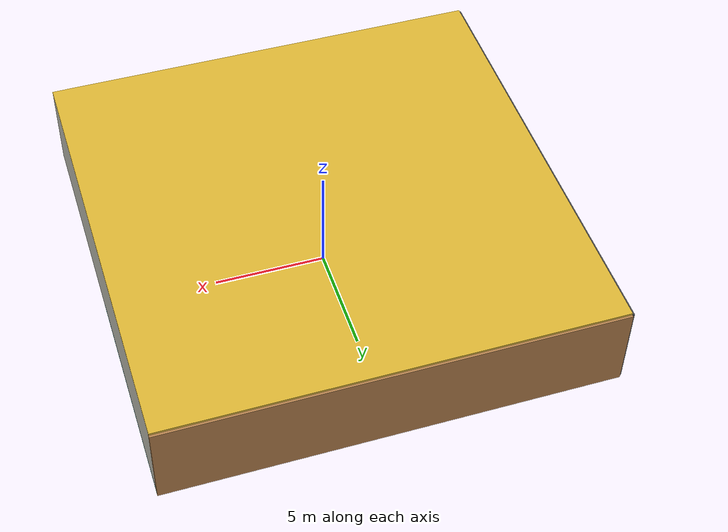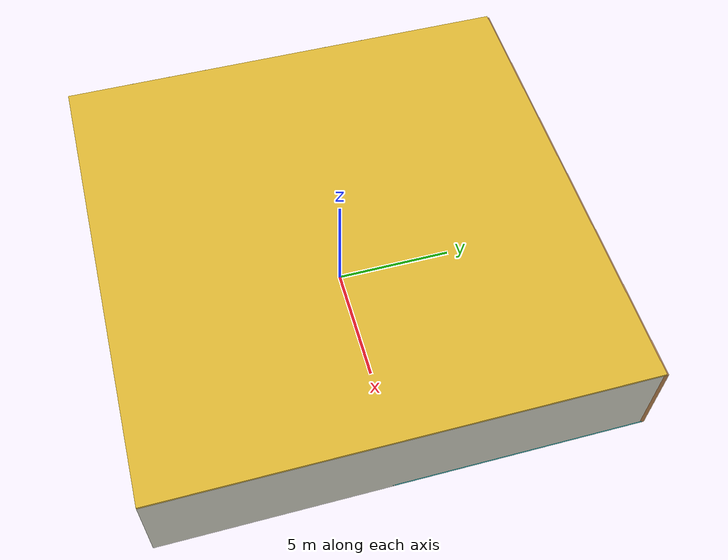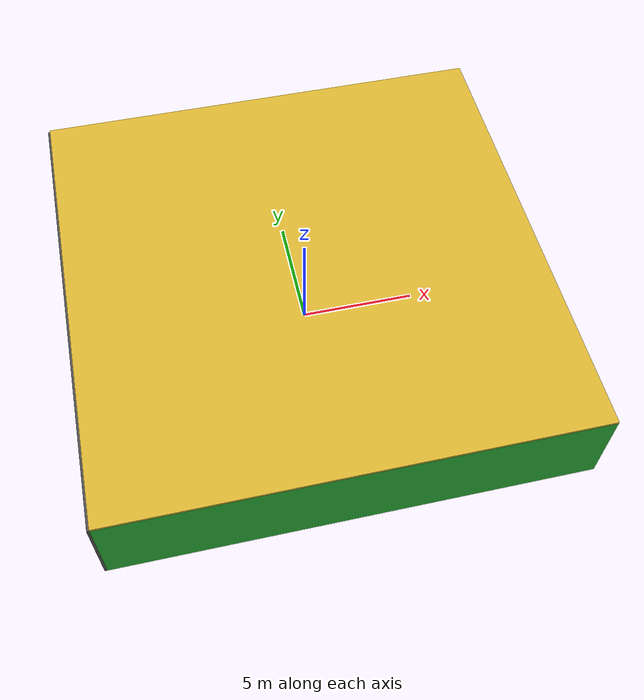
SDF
<sdf version="1.4">
 <world name="default">
  <physics type="ode">
   <max_step_size>0.001</max_step_size>
   <real_time_factor>1</real_time_factor>
   <real_time_update_rate>1000</real_time_update_rate>
   <gravity>0 0 -9.8</gravity>
  </physics>
  <scene><ambient>0.4 0.4 0.4 1</ambient><background>0.7 0.7 0.7 1</background><shadows>1</shadows></scene>
  <model name="Surrounding">
   <static>1</static>
   <link name="Ceiling">
    <collision name="Ceiling_Collision"><geometry><box><size>20 20 0.1</size></box></geometry></collision>
    <visual name="Ceiling_Visual">
     <geometry><box><size>20 20 0.1</size></box></geometry>
     <material>
      <script><uri>file://media/materials/scripts/gazebo.material</uri><name>Gazebo/Gold</name></script>
     </material>
    </visual>
    <pose>0 0 4.05 0 0 0</pose>
   </link>
   <link name="Wall_South">
    <collision name="Wall_South_Collision">
     <geometry><box><size>20 0 4</size></box></geometry>
     <pose>0 0 2 0 -0 0</pose>
    </collision>
    <visual name="Wall_South_Visual">
     <pose>0 0 2 0 -0 0</pose>
     <geometry><box><size>20 0 4</size></box></geometry>
     <material>
      <script><uri>file://media/materials/scripts/gazebo.material</uri><name>Gazebo/Green</name></script>
     </material>
    </visual>
    <velocity_decay><linear>0</linear><angular>0</angular></velocity_decay>
    <pose>0 -10 0 0 -0 0</pose>
   </link>
   <link name="Wall_East">
    <collision name="Wall_21_Collision">
     <geometry><box><size>20 0 4</size></box></geometry>
     <pose>0 0 2 0 -0 0</pose>
    </collision>
    <visual name="Wall_21_Visual">
     <pose>0 0 2 0 -0 0</pose>
     <geometry><box><size>20 0 4</size></box></geometry>
     <material>
      <script><uri>file://media/materials/scripts/gazebo.material</uri><name>Gazebo/PaintedWall</name></script>
     </material>
    </visual>
    <velocity_decay><linear>0</linear><angular>0</angular></velocity_decay>
    <pose>10 0 0 0 -0 1.5708</pose>
   </link>
   <link name="Wall_North">
    <collision name="Wall_22_Collision">
     <geometry><box><size>20 0.2 4</size></box></geometry>
     <pose>0 0 2 0 -0 0</pose>
    </collision>
    <visual name="Wall_22_Visual">
     <pose>0 0 2 0 -0 0</pose>
     <geometry><box><size>20 0.2 4</size></box></geometry>
     <material>
      <script><uri>file://media/materials/scripts/gazebo.material</uri><name>Gazebo/Wood</name></script>
     </material>
    </visual>
    <velocity_decay><linear>0</linear><angular>0</angular></velocity_decay>
    <pose>0 10 0 0 -0 0</pose>
   </link>
   <link name="Wall_West">
    <collision name="Wall_23_Collision">
     <geometry><box><size>20 0.2 4</size></box></geometry>
     <pose>0 0 2 0 -0 0</pose>
    </collision>
    <visual name="Wall_23_Visual">
     <pose>0 0 2 0 -0 0</pose>
     <geometry><box><size>20 0.2 4</size></box></geometry>
     <material>
      <script><uri>file://media/materials/scripts/gazebo.material</uri><name>Gazebo/Road</name></script>
     </material>
    </visual>
    <velocity_decay><linear>0</linear><angular>0</angular></velocity_decay>
    <pose>-10 0 0 0 0 -1.5708</pose>
   </link>
   <link name="Ground_link">
    <collision name="collision">
     <pose>0 0 .05 0 -0 0</pose>
     <geometry><box><size>20 20 0.1</size></box></geometry>
    </collision>
    <visual name="visual">
     <pose>0 0 .05 0 -0 0</pose>
     <geometry><box><size>20 20 0.1</size></box></geometry>
     <material>
      <script><uri>file://media/materials/scripts/gazebo.material</uri><name>Gazebo/Turquoise</name></script>
     </material>
    </visual>
   </link>
   <static>1</static>
  </model>
  <spherical_coordinates>
   <surface_model>EARTH_WGS84</surface_model>
   <latitude_deg>0</latitude_deg>
   <longitude_deg>0</longitude_deg>
   <elevation>0</elevation>
   <heading_deg>0</heading_deg>
  </spherical_coordinates>
  <light name="lightball_0" type="diffuse">
   <diffuse>0.8 0.8 0.8 1</diffuse>
   <specular>0.2 0.2 0.2 1</specular>
   <attenuation>
    <range>100</range>
    <constant>0.7</constant>
    <linear>0.01</linear>
    <quadratic>0.001</quadratic>
   </attenuation>
   <direction>-0.5 0.1 -0.9</direction>
   <pose>-5.94194912648 9.35582436357 3.86721445758 0 0 0</pose>
  </light>
  <light name="lightball_1" type="diffuse">
   <diffuse>0.8 0.8 0.8 1</diffuse>
   <specular>0.2 0.2 0.2 1</specular>
   <attenuation>
    <range>100</range>
    <constant>0.7</constant>
    <linear>0.01</linear>
    <quadratic>0.001</quadratic>
   </attenuation>
   <direction>-0.5 0.1 -0.9</direction>
   <pose>8.79418058517 -1.58675382362 2.28776082474 0 0 0</pose>
  </light>
  <light name="lightball_2" type="diffuse">
   <diffuse>0.8 0.8 0.8 1</diffuse>
   <specular>0.2 0.2 0.2 1</specular>
   <attenuation>
    <range>100</range>
    <constant>0.7</constant>
    <linear>0.01</linear>
    <quadratic>0.001</quadratic>
   </attenuation>
   <direction>-0.5 0.1 -0.9</direction>
   <pose>-0.461234043694 -5.94234000257 1.33374357908 0 0 0</pose>
  </light>
  <light name="lightball_3" type="diffuse">
   <diffuse>0.8 0.8 0.8 1</diffuse>
   <specular>0.2 0.2 0.2 1</specular>
   <attenuation>
    <range>100</range>
    <constant>0.7</constant>
    <linear>0.01</linear>
    <quadratic>0.001</quadratic>
   </attenuation>
   <direction>-0.5 0.1 -0.9</direction>
   <pose>9.28413894308 -2.95738576458 3.5384392013 0 0 0</pose>
  </light>
  <light name="lightball_4" type="diffuse">
   <diffuse>0.8 0.8 0.8 1</diffuse>
   <specular>0.2 0.2 0.2 1</specular>
   <attenuation>
    <range>100</range>
    <constant>0.7</constant>
    <linear>0.01</linear>
    <quadratic>0.001</quadratic>
   </attenuation>
   <direction>-0.5 0.1 -0.9</direction>
   <pose>2.04443271992 8.23170794038 3.24003817057 0 0 0</pose>
  </light>
  <light name="lightball_5" type="diffuse">
   <diffuse>0.8 0.8 0.8 1</diffuse>
   <specular>0.2 0.2 0.2 1</specular>
   <attenuation>
    <range>100</range>
    <constant>0.7</constant>
    <linear>0.01</linear>
    <quadratic>0.001</quadratic>
   </attenuation>
   <direction>-0.5 0.1 -0.9</direction>
   <pose>-5.68816769258 7.43298240474 1.02311369352 0 0 0</pose>
  </light>
  <light name="lightball_6" type="diffuse">
   <diffuse>0.8 0.8 0.8 1</diffuse>
   <specular>0.2 0.2 0.2 1</specular>
   <attenuation>
    <range>100</range>
    <constant>0.7</constant>
    <linear>0.01</linear>
    <quadratic>0.001</quadratic>
   </attenuation>
   <direction>-0.5 0.1 -0.9</direction>
   <pose>4.57746887315 -4.7477505927 2.8645114002 0 0 0</pose>
  </light>
  <light name="lightball_7" type="diffuse">
   <diffuse>0.8 0.8 0.8 1</diffuse>
   <specular>0.2 0.2 0.2 1</specular>
   <attenuation>
    <range>100</range>
    <constant>0.7</constant>
    <linear>0.01</linear>
    <quadratic>0.001</quadratic>
   </attenuation>
   <direction>-0.5 0.1 -0.9</direction>
   <pose>-4.01468084506 -2.01041736912 1.91705965872 0 0 0</pose>
  </light>
  <light name="lightball_8" type="diffuse">
   <diffuse>0.8 0.8 0.8 1</diffuse>
   <specular>0.2 0.2 0.2 1</specular>
   <attenuation>
    <range>100</range>
    <constant>0.7</constant>
    <linear>0.01</linear>
    <quadratic>0.001</quadratic>
   </attenuation>
   <direction>-0.5 0.1 -0.9</direction>
   <pose>-8.78702234835 -8.51277036861 1.07594544651 0 0 0</pose>
  </light>
  <light name="lightball_9" type="diffuse">
   <diffuse>0.8 0.8 0.8 1</diffuse>
   <specular>0.2 0.2 0.2 1</specular>
   <attenuation>
    <range>100</range>
    <constant>0.7</constant>
    <linear>0.01</linear>
    <quadratic>0.001</quadratic>
   </attenuation>
   <direction>-0.5 0.1 -0.9</direction>
   <pose>5.97132596245 5.58424540547 3.36650663126 0 0 0</pose>
  </light>
  <light name="lightball_10" type="diffuse">
   <diffuse>0.8 0.8 0.8 1</diffuse>
   <specular>0.2 0.2 0.2 1</specular>
   <attenuation>
    <range>100</range>
    <constant>0.7</constant>
    <linear>0.01</linear>
    <quadratic>0.001</quadratic>
   </attenuation>
   <direction>-0.5 0.1 -0.9</direction>
   <pose>-0.533061879796 -7.91539229199 2.8741879394 0 0 0</pose>
  </light>
  <light name="lightball_11" type="diffuse">
   <diffuse>0.8 0.8 0.8 1</diffuse>
   <specular>0.2 0.2 0.2 1</specular>
   <attenuation>
    <range>100</range>
    <constant>0.7</constant>
    <linear>0.01</linear>
    <quadratic>0.001</quadratic>
   </attenuation>
   <direction>-0.5 0.1 -0.9</direction>
   <pose>3.56048660736 0.420706378466 2.48345954471 0 0 0</pose>
  </light>
  <light name="lightball_12" type="diffuse">
   <diffuse>0.8 0.8 0.8 1</diffuse>
   <specular>0.2 0.2 0.2 1</specular>
   <attenuation>
    <range>100</range>
    <constant>0.7</constant>
    <linear>0.01</linear>
    <quadratic>0.001</quadratic>
   </attenuation>
   <direction>-0.5 0.1 -0.9</direction>
   <pose>5.49579733321 4.9845940415 3.34661696172 0 0 0</pose>
  </light>
  <include>
   <uri>model://construction_cone</uri>
   <pose>0.953514181034 -3.77645920357 0 0 0 3.00277671694</pose>
  </include>
  <include><uri>model://cabinet</uri><pose>2.19433967759 4.20617418654 0 0 0 2.31475717158</pose></include>
  <include>
   <uri>model://robocup_3Dsim_goal</uri>
   <pose>4.19558920073 -5.20887642224 0 0 0 0.766854344286</pose>
  </include>
  <include><uri>model://cabinet</uri><pose>4.85973232647 4.81060941335 0 0 0 0.0553838742408</pose></include>
  <include>
   <uri>model://robocup_3Dsim_goal</uri>
   <pose>7.71335916064 -4.45655975104 0 0 0 1.97967692558</pose>
  </include>
  <include><uri>model://table</uri><pose>6.96870143539 0.989627744819 0 0 0 0.752487845768</pose></include>
 </world>
</sdf>

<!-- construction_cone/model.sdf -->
<sdf version="1.5">
  <model name="Construction Cone">
    <link name="link">
      <collision name="collision">
        <geometry>
          <mesh>
            <scale>10 10 10</scale>
            <uri>file://isr-testbed/construction_cone/meshes/construction_cone.dae</uri>
          </mesh>
        </geometry>
      </collision>
      <visual name="visual">
        <geometry>
          <mesh>
            <scale>10 10 10</scale>
            <uri>file://isr-testbed/construction_cone/meshes/construction_cone.dae</uri>
          </mesh>
        </geometry>
      </visual>
    </link>
  </model>
</sdf>

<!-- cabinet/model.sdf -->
<sdf version="1.5">
  <model name="cabinet">
    <static>true</static>
    <link name="cabinet_bottom_plate">
      <inertial>
        <pose>0 0 -1 0 0 0</pose>
        <inertia>
          <ixx>2.050000</ixx>
          <ixy>0</ixy>
          <ixz>0</ixz>
          <iyy>2.050000</iyy>
          <iyz>0</iyz>
          <izz>2.050000</izz>
        </inertia>
        <mass>25.000000</mass>
      </inertial>
      <collision name="cabinet_bottom_plate_geom">
        <pose>0 0 0.010000 0 0 0</pose>
        <geometry>
          <box>
            <size>0.450000 0.450000 0.020000</size>
          </box>
        </geometry>
      </collision>
      <visual name="cabinet_bottom_plate_geom_visual">
        <pose>0 0 0.010000 0 0 0</pose>
        <geometry>
          <box>
            <size>0.450000 0.450000 0.020000</size>
          </box>
        </geometry>
        <material>
          <script>
            <uri>model://media/materials/scripts/gazebo.material</uri>
            <name>Gazebo/Wood</name>
          </script>
        </material>
      </visual>
      <collision name="cabinet_bottom_plate_geom_cabinet_back_plate">
        <pose>0.235000 0 0.510000 0 0 0</pose>
        <geometry>
          <box>
            <size>0.020000 0.450000 1.020000</size>
          </box>
        </geometry>
      </collision>
      <visual name="cabinet_bottom_plate_geom_cabinet_back_plate_visual">
        <pose>0.235000 0 0.510000 0 0 0</pose>
        <geometry>
          <box>
            <size>0.020000 0.450000 1.020000</size>
          </box>
        </geometry>
        <material>
          <script>
            <uri>model://media/materials/scripts/gazebo.material</uri>
            <name>Gazebo/Wood</name>
          </script>
        </material>
      </visual>
      <collision name="cabinet_bottom_plate_geom_cabinet_left_plate">
        <pose>0 0.235000 0.510000 0 0 0</pose>
        <geometry>
          <box>
            <size>0.450000 0.020000 1.020000</size>
          </box>
        </geometry>
      </collision>
      <visual name="cabinet_bottom_plate_geom_cabinet_left_plate_visual">
        <pose>0 0.235000 0.510000 0 0 0</pose>
        <geometry>
          <box>
            <size>0.450000 0.020000 1.020000</size>
          </box>
        </geometry>
        <material>
          <script>
            <uri>model://media/materials/scripts/gazebo.material</uri>
            <name>Gazebo/Wood</name>
          </script>
        </material>
      </visual>
      <collision name="cabinet_bottom_plate_geom_cabinet_middle_plate">
        <pose>0 0 0.510000 0 0 0</pose>
        <geometry>
          <box>
            <size>0.450000 0.450000 0.020000</size>
          </box>
        </geometry>
      </collision>
      <visual name="cabinet_bottom_plate_geom_cabinet_middle_plate_visual">
        <pose>0 0 0.510000 0 0 0</pose>
        <geometry>
          <box>
            <size>0.450000 0.450000 0.020000</size>
          </box>
        </geometry>
        <material>
          <script>
            <uri>model://media/materials/scripts/gazebo.material</uri>
            <name>Gazebo/Wood</name>
          </script>
        </material>
      </visual>
      <collision name="cabinet_bottom_plate_geom_cabinet_right_plate">
        <pose>0 -0.235000 0.510000 0 0 0</pose>
        <geometry>
          <box>
            <size>0.450000 0.020000 1.020000</size>
          </box>
        </geometry>
      </collision>
      <visual name="cabinet_bottom_plate_geom_cabinet_right_plate_visual">
        <pose>0 -0.235000 0.510000 0 0 0</pose>
        <geometry>
          <box>
            <size>0.450000 0.020000 1.020000</size>
          </box>
        </geometry>
        <material>
          <script>
            <uri>model://media/materials/scripts/gazebo.material</uri>
            <name>Gazebo/Wood</name>
          </script>
        </material>
      </visual>
      <collision name="cabinet_bottom_plate_geom_cabinet_top_plate">
        <pose>0 0 1.010000 0 0 0</pose>
        <geometry>
          <box>
            <size>0.450000 0.450000 0.020000</size>
          </box>
        </geometry>
      </collision>
      <visual name="cabinet_bottom_plate_geom_cabinet_top_plate_visual">
        <pose>0 0 1.010000 0 0 0</pose>
        <geometry>
          <box>
            <size>0.450000 0.450000 0.020000</size>
          </box>
        </geometry>
        <material>
          <script>
            <uri>model://media/materials/scripts/gazebo.material</uri>
            <name>Gazebo/Wood</name>
          </script>
        </material>
      </visual>
    </link>
  </model>
</sdf>

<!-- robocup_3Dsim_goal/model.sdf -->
<sdf version="1.5">
  <model name="robocup_3d_goal">
    <static>true</static>
    <link name="left_post">
      <pose>0 1.05 0.45 0 0 0</pose>
      <collision name="collision">
        <geometry>
          <cylinder>
            <radius>0.05</radius>
            <length>0.9</length>
          </cylinder>
        </geometry>
      </collision>
      <visual name="visual">
        <geometry>
          <cylinder>
            <radius>0.05</radius>
            <length>0.9</length>
          </cylinder>
        </geometry>
        <material>
          <script>
            <uri>file://media/materials/scripts/gazebo.material</uri>
            <name>Gazebo/ZincYellow</name>
          </script>
        </material>
      </visual>
    </link>
    <link name="left_support_horiz_lower">
      <pose>0.30 1.05 0.01 0 0 0</pose>
      <collision name="collision">
        <geometry>
          <box>
            <size>0.50 0.02 0.02</size>
          </box>
        </geometry>
      </collision>
      <visual name="visual">
        <geometry>
          <box>
            <size>0.50 0.02 0.02</size>
          </box>
        </geometry>
        <material>
          <script>
            <uri>file://media/materials/scripts/gazebo.material</uri>
            <name>Gazebo/White</name>
          </script>
        </material>
      </visual>
    </link>
    <link name="left_support_horiz_upper">
      <pose>0.30 1.05 0.79 0 0 0</pose>
      <collision name="collision">
        <geometry>
          <box>
            <size>0.50 0.02 0.02</size>
          </box>
        </geometry>
      </collision>
      <visual name="visual">
        <geometry>
          <box>
            <size>0.50 0.02 0.02</size>
          </box>
        </geometry>
        <material>
          <script>
            <uri>file://media/materials/scripts/gazebo.material</uri>
            <name>Gazebo/White</name>
          </script>
        </material>
      </visual>
    </link>
    <link name="left_support_vertical">
      <pose>0.56 1.05 0.4 0 1.5708 0</pose>
      <collision name="collision">
        <geometry>
          <box>
            <size>0.80 0.02 0.02</size>
          </box>
        </geometry>
      </collision>
      <visual name="visual">
        <geometry>
          <box>
            <size>0.80 0.02 0.02</size>
          </box>
        </geometry>
        <material>
          <script>
            <uri>file://media/materials/scripts/gazebo.material</uri>
            <name>Gazebo/White</name>
          </script>
        </material>
      </visual>
    </link>
    <link name="right_support_horiz_lower">
      <pose>0.30 -1.05 0.01 0 0 0</pose>
      <collision name="collision">
        <geometry>
          <box>
            <size>0.50 0.02 0.02</size>
          </box>
        </geometry>
      </collision>
      <visual name="visual">
        <geometry>
          <box>
            <size>0.50 0.02 0.02</size>
          </box>
        </geometry>
        <material>
          <script>
            <uri>file://media/materials/scripts/gazebo.material</uri>
            <name>Gazebo/White</name>
          </script>
        </material>
      </visual>
    </link>
    <link name="right_support_horiz_upper">
      <pose>0.30 -1.05 0.79 0 0 0</pose>
      <collision name="collision">
        <geometry>
          <box>
            <size>0.50 0.02 0.02</size>
          </box>
        </geometry>
      </collision>
      <visual name="visual">
        <geometry>
          <box>
            <size>0.50 0.02 0.02</size>
          </box>
        </geometry>
        <material>
          <script>
            <uri>file://media/materials/scripts/gazebo.material</uri>
            <name>Gazebo/White</name>
          </script>
        </material>
      </visual>
    </link>
    <link name="right_support_vertical">
      <pose>0.56 -1.05 0.4 0 1.5708 0</pose>
      <collision name="collision">
        <geometry>
          <box>
            <size>0.80 0.02 0.02</size>
          </box>
        </geometry>
      </collision>
      <visual name="visual">
        <geometry>
          <box>
            <size>0.80 0.02 0.02</size>
          </box>
        </geometry>
        <material>
          <script>
            <uri>file://media/materials/scripts/gazebo.material</uri>
            <name>Gazebo/White</name>
          </script>
        </material>
      </visual>
    </link>
    <link name="center_support_horiz_lower">
      <pose>0.56 0 0.01 0 1.5708 0</pose>
      <collision name="collision">
        <geometry>
          <box>
            <size>0.02 2.08 0.02</size>
          </box>
        </geometry>
      </collision>
      <visual name="visual">
        <geometry>
          <box>
            <size>0.02 2.08 0.02</size>
          </box>
        </geometry>
        <material>
          <script>
            <uri>file://media/materials/scripts/gazebo.material</uri>
            <name>Gazebo/White</name>
          </script>
        </material>
      </visual>
    </link>
    <link name="center_support_horiz_upper">
      <pose>0.56 0 0.79 0 1.5708 0</pose>
      <collision name="collision">
        <geometry>
          <box>
            <size>0.02 2.08 0.02</size>
          </box>
        </geometry>
      </collision>
      <visual name="visual">
        <geometry>
          <box>
            <size>0.02 2.08 0.02</size>
          </box>
        </geometry>
        <material>
          <script>
            <uri>file://media/materials/scripts/gazebo.material</uri>
            <name>Gazebo/White</name>
          </script>
        </material>
      </visual>
    </link>
    <link name="right_post">
      <pose>0 -1.05 0.45 0 0 0</pose>
      <collision name="collision">
        <geometry>
          <cylinder>
            <radius>0.05</radius>
            <length>0.9</length>
          </cylinder>
        </geometry>
      </collision>
      <visual name="visual">
        <geometry>
          <cylinder>
            <radius>0.05</radius>
            <length>0.9</length>
          </cylinder>
        </geometry>
        <material>
          <script>
            <uri>file://media/materials/scripts/gazebo.material</uri>
            <name>Gazebo/ZincYellow</name>
          </script>
        </material>
      </visual>
    </link>
    <link name="crossbar">
      <pose>0 0 0.85 1.57 1.57 0</pose>
      <collision name="collision">
        <geometry>
          <cylinder>
            <radius>0.05</radius>
            <length>2.0</length>
          </cylinder>
        </geometry>
      </collision>
      <visual name="visual">
        <geometry>
          <cylinder>
            <radius>0.05</radius>
            <length>2.0</length>
          </cylinder>
        </geometry>
        <material>
          <script>
            <uri>file://media/materials/scripts/gazebo.material</uri>
            <name>Gazebo/ZincYellow</name>
          </script>
        </material>
      </visual>
    </link>
    <link name="center_net">
      <pose>0.56 0 0.40 0 0 0</pose>
      <collision name="collision">
        <geometry>
          <box>
            <size>0.01 2.1 0.80</size>
          </box>
        </geometry>
      </collision>
      <visual name="visual">
        <geometry>
          <box>
            <size>0.01 2.1 0.80</size>
          </box>
        </geometry>
        <material>
          <script>
            <uri>model://../model_source/models/robocup09_spl_field/materials/scripts/</uri>
            <uri>model://../model_source/models/robocup09_spl_field/materials/textures/</uri>
            <name>RoboCup/Net</name>
          </script>
        </material>
      </visual>
    </link>
    <link name="left_net">
      <pose>0.30 1.05 0.40 0 0 0</pose>
      <collision name="collision">
        <geometry>
          <box>
            <size>0.50 0.01 0.76</size>
          </box>
        </geometry>
      </collision>
      <visual name="visual">
        <geometry>
          <box>
            <size>0.50 0.01 0.76</size>
          </box>
        </geometry>
        <material>
          <script>
            <uri>model://../model_source/models/robocup09_spl_field/materials/scripts/</uri>
            <uri>model://../model_source/models/robocup09_spl_field/materials/textures/</uri>
            <name>RoboCup/Net</name>
          </script>
        </material>
      </visual>
    </link>
    <link name="right_net">
      <pose>0.30 -1.05 0.40 0 0 0</pose>
      <collision name="collision">
        <geometry>
          <box>
            <size>0.50 0.01 0.76</size>
          </box>
        </geometry>
      </collision>
      <visual name="visual">
        <geometry>
          <box>
            <size>0.50 0.01 0.76</size>
          </box>
        </geometry>
        <material>
          <script>
            <uri>model://../model_source/models/robocup09_spl_field/materials/scripts/</uri>
            <uri>model://../model_source/models/robocup09_spl_field/materials/textures/</uri>
            <name>RoboCup/Net</name>
          </script>
        </material>
      </visual>
    </link>
  </model>
</sdf>

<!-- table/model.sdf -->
<sdf version="1.5">
  <model name="table">
    <static>true</static>
    <link name="link">
      <collision name="surface">
        <pose>0 0 1.0 0 0 0</pose>
        <geometry>
          <box>
            <size>1.5 0.8 0.03</size>
          </box>
        </geometry>
        <surface>
          <friction>
            <ode>
              <mu>0.6</mu>
              <mu2>0.6</mu2>
            </ode>
          </friction>
        </surface>
      </collision>
      <visual name="visual1">
        <pose>0 0 1.0 0 0 0</pose>
        <geometry>
          <box>
            <size>1.5 0.8 0.03</size>
          </box>
        </geometry>
        <material>
          <script>
            <uri>model://media/materials/scripts/gazebo.material</uri>
            <name>Gazebo/Wood</name>
          </script>
        </material>
      </visual>
      <collision name="front_left_leg">
        <pose>0.68 0.38 0.5 0 0 0</pose>
        <geometry>
          <cylinder>
            <radius>0.02</radius>
            <length>1.0</length>
          </cylinder>
        </geometry>
      </collision>
      <visual name="front_left_leg">
        <pose>0.68 0.38 0.5 0 0 0</pose>
        <geometry>
          <cylinder>
            <radius>0.02</radius>
            <length>1.0</length>
          </cylinder>
        </geometry>
        <material>
          <script>
            <uri>model://media/materials/scripts/gazebo.material</uri>
            <name>Gazebo/Grey</name>
          </script>
        </material>
      </visual>
      <collision name="front_right_leg">
        <pose>0.68 -0.38 0.5 0 0 0</pose>
        <geometry>
          <cylinder>
            <radius>0.02</radius>
            <length>1.0</length>
          </cylinder>
        </geometry>
      </collision>
      <visual name="front_right_leg">
        <pose>0.68 -0.38 0.5 0 0 0</pose>
        <geometry>
          <cylinder>
            <radius>0.02</radius>
            <length>1.0</length>
          </cylinder>
        </geometry>
        <material>
          <script>
            <uri>model://media/materials/scripts/gazebo.material</uri>
            <name>Gazebo/Grey</name>
          </script>
        </material>
      </visual>
      <collision name="back_right_leg">
        <pose>-0.68 -0.38 0.5 0 0 0</pose>
        <geometry>
          <cylinder>
            <radius>0.02</radius>
            <length>1.0</length>
          </cylinder>
        </geometry>
      </collision>
      <visual name="back_right_leg">
        <pose>-0.68 -0.38 0.5 0 0 0</pose>
        <geometry>
          <cylinder>
            <radius>0.02</radius>
            <length>1.0</length>
          </cylinder>
        </geometry>
        <material>
          <script>
            <uri>model://media/materials/scripts/gazebo.material</uri>
            <name>Gazebo/Grey</name>
          </script>
        </material>
      </visual>
      <collision name="back_left_leg">
        <pose>-0.68 0.38 0.5 0 0 0</pose>
        <geometry>
          <cylinder>
            <radius>0.02</radius>
            <length>1.0</length>
          </cylinder>
        </geometry>
      </collision>
      <visual name="back_left_leg">
        <pose>-0.68 0.38 0.5 0 0 0</pose>
        <geometry>
          <cylinder>
            <radius>0.02</radius>
            <length>1.0</length>
          </cylinder>
        </geometry>
        <material>
          <script>
            <uri>model://media/materials/scripts/gazebo.material</uri>
            <name>Gazebo/Grey</name>
          </script>
        </material>
      </visual>
    </link>
  </model>
</sdf>
